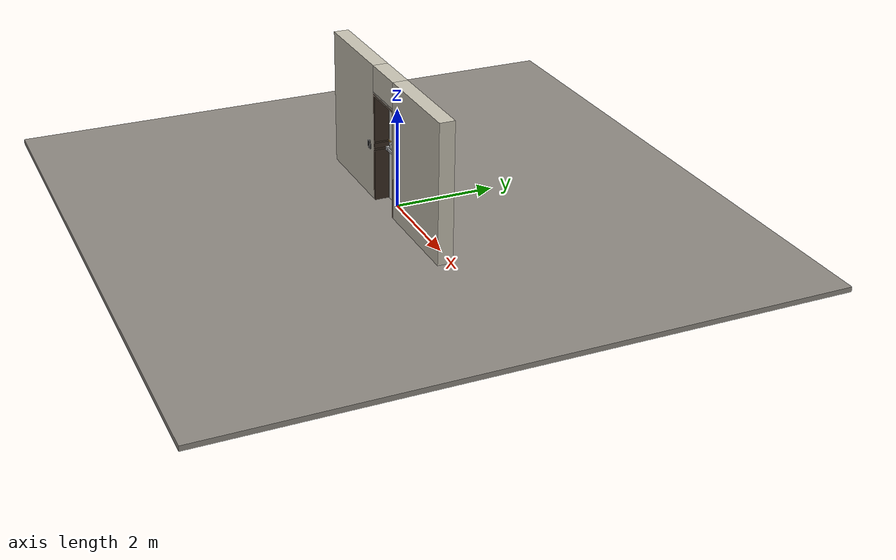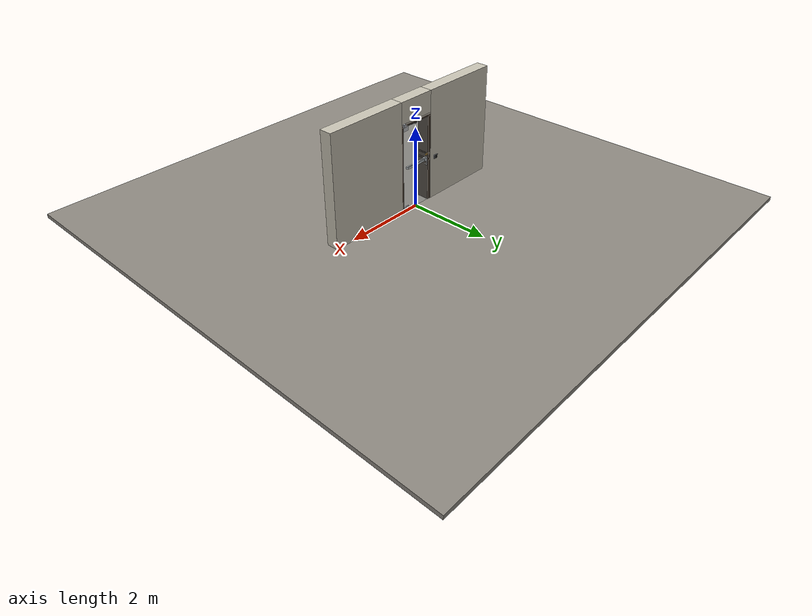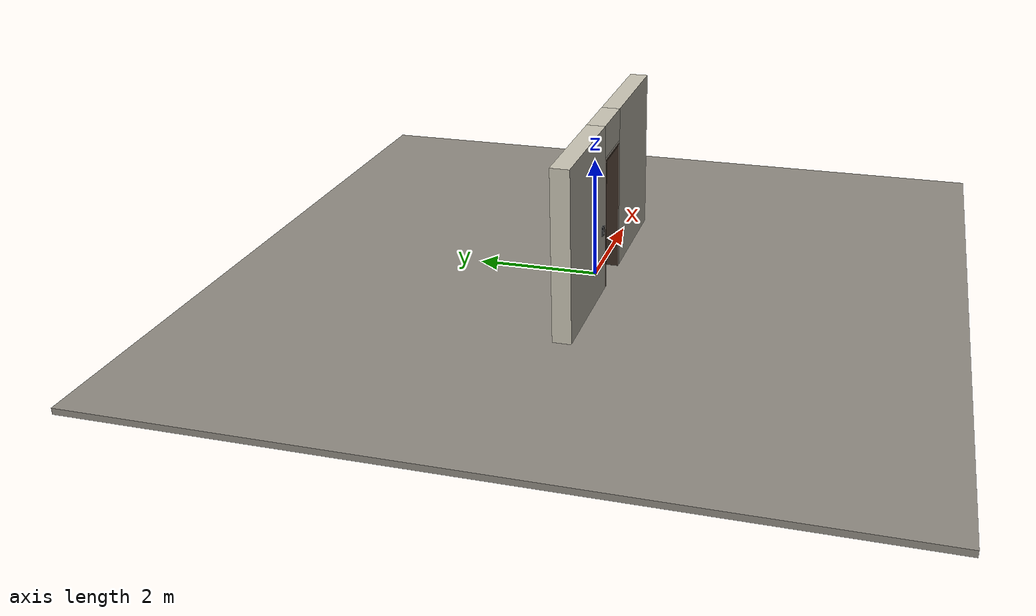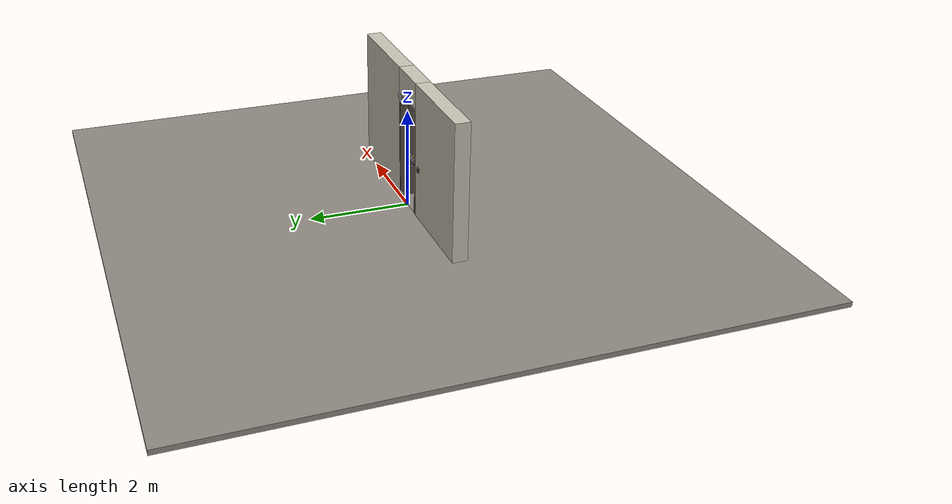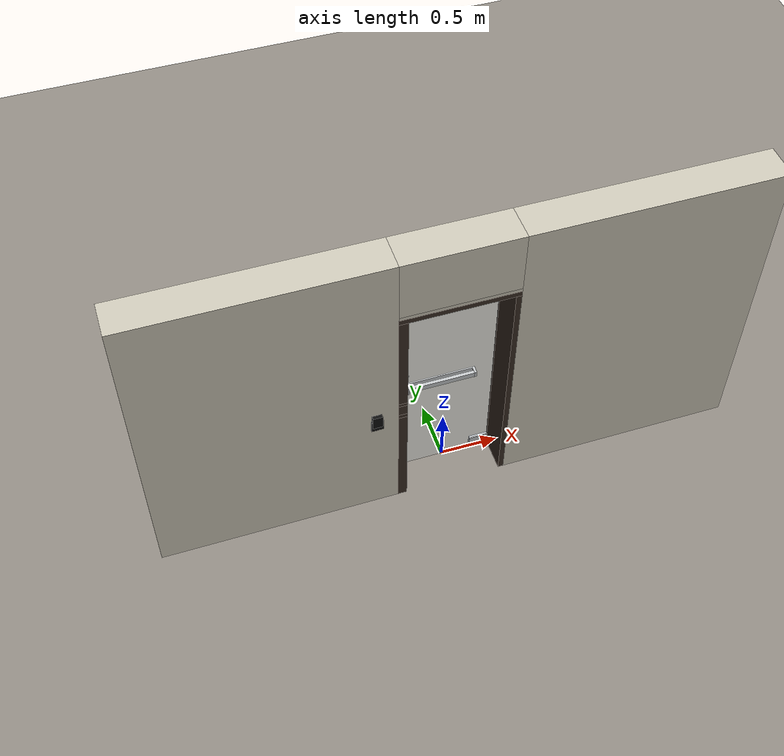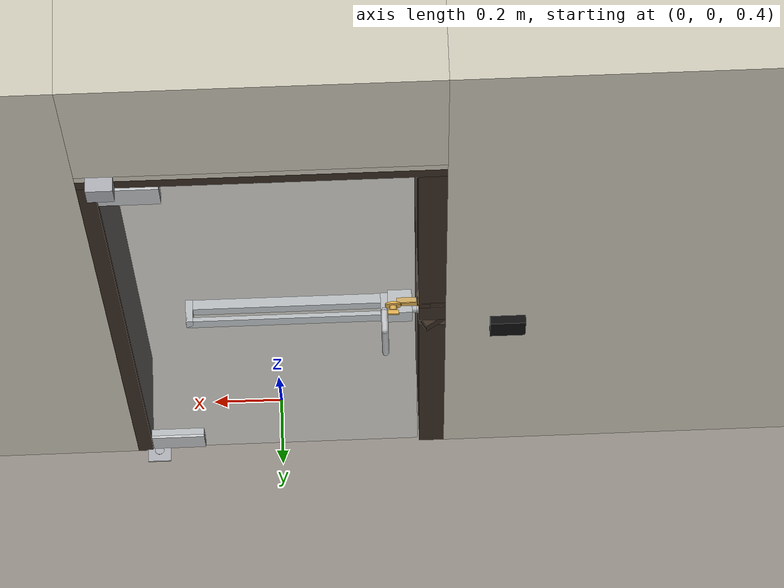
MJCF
<?xml version="1.0" ?>
<mujoco model="db0011_automatic_swing_full">
  <compiler angle="radian" meshdir="../../hardware" texturedir="../../textures" autolimits="true" inertiafromgeom="false"/>
  <option timestep="0.002" integrator="implicitfast" cone="elliptic" impratio="10" noslip_iterations="3">
    <flag multiccd="enable"/>
  </option>
  <size memory="16M"/>
  <default>
    <geom condim="4" solref="0.005 1" solimp="0.95 0.99 0.001"/>
    <joint solreflimit="0.005 1" solimplimit="0.95 0.99 0.001"/>
    <tendon solreflimit="0.005 1"/>
    <equality solref="0.002 1"/>
  </default>
  <visual>
    <headlight ambient="0.4 0.4 0.4" diffuse="0.7 0.7 0.7" specular="0.2 0.2 0.2"/>
    <quality shadowsize="4096"/>
    <map znear="0.01" zfar="60"/>
  </visual>
  <asset>
    <mesh name="pull_1e5d69a91a" file="pull_1e5d69a91a.obj"/>
    <mesh name="thumbturn_eb5c9899a3" file="thumbturn_eb5c9899a3.obj"/>
    <mesh name="touchbar_pad_73300ec449" file="touchbar_pad_73300ec449.obj"/>
    <material name="mat_floor" rgba="0.55 0.53 0.5 1" specular="0.2" shininess="0.15" reflectance="0"/>
    <material name="mat_wall" rgba="0.78 0.76 0.7 1" specular="0.2" shininess="0.1" reflectance="0"/>
    <material name="mat_leaf" rgba="0.85 0.92 0.95 0.25" specular="0.2" shininess="0.95" reflectance="0.1"/>
    <material name="mat_glass_leaf" rgba="0.85 0.92 0.95 0.25" specular="0.2" shininess="0.95" reflectance="0.1"/>
    <material name="mat_patch" rgba="0.75 0.76 0.77 1" specular="0.8" shininess="0.65" reflectance="0.4"/>
    <material name="mat_hinge" rgba="0.65 0.66 0.68 1" specular="0.74" shininess="0.5" reflectance="0.36"/>
    <material name="mat_op_stainless" rgba="0.75 0.76 0.77 1" specular="0.8" shininess="0.65" reflectance="0.4"/>
    <material name="mat_bolt" rgba="0.75 0.76 0.77 1" specular="0.8" shininess="0.65" reflectance="0.4"/>
    <material name="mat_deadbolt" rgba="0.85 0.66 0.3 1" specular="0.8" shininess="0.75" reflectance="0.4"/>
    <material name="mat_frame" rgba="0.22 0.17 0.13 1" specular="0.8" shininess="0.6" reflectance="0.4"/>
    <material name="mat_closer" rgba="0.22 0.17 0.13 1" specular="0.8" shininess="0.6" reflectance="0.4"/>
    <material name="mat_wallreader" rgba="0.05 0.05 0.05 1" specular="0.38" shininess="0.3" reflectance="0.12"/>
    <texture name="skybox" type="skybox" builtin="gradient" rgb1="0.6 0.7 0.85" rgb2="0.9 0.92 0.95" width="256" height="256"/>
  </asset>
  <worldbody>
    <light name="sun" pos="1.5 -2.5 4" dir="-0.3 0.5 -0.8" directional="true" diffuse="0.8 0.8 0.8" specular="0.3 0.3 0.3" castshadow="true"/>
    <light name="fill" pos="-1.5 2.5 3" dir="0.3 -0.5 -0.7" directional="true" diffuse="0.35 0.35 0.4" castshadow="false"/>
    <camera name="robot_view" pos="0 -2.774812 1.812087" xyaxes="1 0 0 0 0.26963 0.962964" fovy="52"/>
    <camera name="far_view" pos="0 2.500812 1.812087" xyaxes="-1 0 0 0 -0.26963 0.962964" fovy="52"/>
    <camera name="iso" pos="-2.004737 -2.352762 2.234138" xyaxes="0.741536 -0.670913 0 0.242917 0.268487 0.932151" fovy="46"/>
    <camera name="detail_handle" pos="-0.135 -0.734 1.347" xyaxes="0.97561 0.219512 0 -0.070934 0.315262 0.94635" fovy="38"/>
    <geom name="floor" type="box" size="6 6 0.05" pos="0 0 -0.05" material="mat_floor" group="0" contype="1" conaffinity="1" friction="0.8 0.005 0.0001" density="2400"/>
    <geom name="wall_left" type="box" size="1.007 0.15 1.3735" pos="-1.493 -0.137 1.3735" material="mat_wall" group="0" contype="1" conaffinity="1" friction="0.6 0.005 0.0001" density="800"/>
    <geom name="wall_right" type="box" size="1.022 0.15 1.3735" pos="1.478 -0.137 1.3735" material="mat_wall" group="0" contype="1" conaffinity="1" friction="0.6 0.005 0.0001" density="800"/>
    <geom name="wall_header" type="box" size="0.471 0.15 0.2625" pos="-0.015 -0.137 2.4845" material="mat_wall" group="0" contype="1" conaffinity="1" friction="0.6 0.005 0.0001" density="800"/>
    <geom name="pivot_bottom_socket" type="box" size="0.035 0.035 0.0085" pos="0.392 0.016 -0.0015" material="mat_hinge" group="1" contype="0" conaffinity="0" density="7850"/>
    <geom name="pivot_top_bracket" type="box" size="0.035 0.035 0.0355" pos="0.392 0.016 2.1865" material="mat_hinge" group="1" contype="0" conaffinity="0" density="7850"/>
    <geom name="leaf_deadbolt_strike_b" type="box" size="0.0155 0.003 0.0005" pos="-0.4105 0 1.1885" quat="0.5 0.5 0.5 0.5" material="mat_deadbolt" group="1" contype="0" conaffinity="0" density="7800"/>
    <geom name="leaf_deadbolt_strike_l" type="box" size="0.003 0.0155 0.0005" pos="-0.4105 -0.0125 1.207" quat="0.5 0.5 0.5 0.5" material="mat_deadbolt" group="1" contype="0" conaffinity="0" density="7800"/>
    <geom name="leaf_deadbolt_strike_t" type="box" size="0.0155 0.003 0.0005" pos="-0.4105 0 1.2255" quat="0.5 0.5 0.5 0.5" material="mat_deadbolt" group="1" contype="0" conaffinity="0" density="7800"/>
    <geom name="leaf_deadbolt_strike_r" type="box" size="0.003 0.0155 0.0005" pos="-0.4105 0.0125 1.207" quat="0.5 0.5 0.5 0.5" material="mat_deadbolt" group="1" contype="0" conaffinity="0" density="7800"/>
    <geom name="jamb_hinge" type="box" size="0.0225 0.15 1.0735" pos="0.4335 -0.137 1.0735" material="mat_frame" group="0" contype="1" conaffinity="1" friction="0.6 0.005 0.0001" density="300"/>
    <geom name="strike_1067_wall_n" type="box" size="0.0375 0.124 0.02" pos="-0.4485 -0.163 1.067" material="mat_frame" group="0" contype="1" conaffinity="1" friction="0.6 0.005 0.0001" density="300"/>
    <geom name="strike_1067_wall_p" type="box" size="0.0375 0.008 0.02" pos="-0.4485 -0.009 1.067" material="mat_frame" group="0" contype="1" conaffinity="1" friction="0.6 0.005 0.0001" density="300"/>
    <geom name="strike_1067_ramp" type="box" size="0.0375 0.019723 0.02" pos="-0.453323 -0.003013 1.067" quat="0.964866 0 0 0.262741" material="mat_frame" group="0" contype="1" conaffinity="1" friction="0.12 0.005 0.0001" density="300"/>
    <geom name="strike_1067_back" type="box" size="0.026 0.011 0.02" pos="-0.46 -0.028 1.067" material="mat_frame" group="0" contype="1" conaffinity="1" friction="0.6 0.005 0.0001" density="300"/>
    <geom name="strike_1207_wall_n" type="box" size="0.0375 0.13875 0.0155" pos="-0.4485 -0.14825 1.207" material="mat_frame" group="0" contype="1" conaffinity="1" friction="0.6 0.005 0.0001" density="300"/>
    <geom name="strike_1207_wall_p" type="box" size="0.0157 0.003 0.0155" pos="-0.4267 0.0125 1.207" material="mat_frame" group="0" contype="1" conaffinity="1" friction="0.6 0.005 0.0001" density="300"/>
    <geom name="strike_1207_back" type="box" size="0.0228 0.0095 0.0155" pos="-0.4632 0 1.207" material="mat_frame" group="0" contype="1" conaffinity="1" friction="0.6 0.005 0.0001" density="300"/>
    <geom name="jamb_strike_0" type="box" size="0.0375 0.15 0.5235" pos="-0.4485 -0.137 0.5235" material="mat_frame" group="0" contype="1" conaffinity="1" friction="0.6 0.005 0.0001" density="300"/>
    <geom name="jamb_strike_1" type="box" size="0.0375 0.15 0.05225" pos="-0.4485 -0.137 1.13925" material="mat_frame" group="0" contype="1" conaffinity="1" friction="0.6 0.005 0.0001" density="300"/>
    <geom name="jamb_strike_2" type="box" size="0.0375 0.15 0.46225" pos="-0.4485 -0.137 1.68475" material="mat_frame" group="0" contype="1" conaffinity="1" friction="0.6 0.005 0.0001" density="300"/>
    <geom name="jamb_head" type="box" size="0.471 0.15 0.0225" pos="-0.015 -0.137 2.1695" material="mat_frame" group="0" contype="1" conaffinity="1" friction="0.6 0.005 0.0001" density="300"/>
    <geom name="head_stud" type="box" size="0.471 0.15 0.015" pos="-0.015 -0.137 2.207" material="mat_wall" group="0" contype="1" conaffinity="1" friction="0.6 0.005 0.0001" density="500"/>
    <geom name="auto_operator_header" type="box" size="0.34 0.055 0.055" pos="0 -0.071 2.218" material="mat_closer" group="0" contype="1" conaffinity="1" friction="0.6 0.005 0.0001" density="1500"/>
    <geom name="wall_reader" type="box" size="0.04 0.015 0.06" pos="-0.661 -0.302 1.1" material="mat_wallreader" group="0" contype="1" conaffinity="1" friction="0.6 0.005 0.0001" density="1000"/>
    <geom name="wave_sensor_n" type="box" size="0.05 0.012 0.05" pos="-0.661 -0.299 1.05" material="mat_wallreader" group="0" contype="1" conaffinity="1" friction="0.6 0.005 0.0001" density="1000"/>
    <geom name="wave_sensor_p" type="box" size="0.05 0.012 0.05" pos="-0.661 0.025 1.05" material="mat_wallreader" group="0" contype="1" conaffinity="1" friction="0.6 0.005 0.0001" density="1000"/>
    <site name="approach_point" pos="0 -1.5 0" quat="1 0 0 0" size="0.05" rgba="0.2 0.9 0.2 0.5" group="4"/>
    <site name="goal_point" pos="0 1.5 0" quat="1 0 0 0" size="0.05" rgba="0.2 0.9 0.2 0.5" group="4"/>
    <site name="door_plane_center" pos="0 0 1.0735" quat="1 0 0 0" size="0.02" rgba="0.2 0.9 0.2 0.5" group="4"/>
    <body name="leaf" pos="0.411 0 0">
      <inertial pos="-0.493186 -0.0094 1.148947" mass="63.796282" quat="0.481396 0.480594 0.522096 -0.514494" diaginertia="3.854056546 16.292976763 20.052394182"/>
      <joint name="leaf_hinge" type="hinge" axis="0 0 -1" pos="-0.019 0.016 0" limited="true" range="0 1.745329" damping="15.168374" frictionloss="0.633524" stiffness="15.342537" springref="-1.864099" armature="0.02"/>
      <geom name="leaf_glass" type="box" size="0.4065 0.006 1.067" pos="-0.4095 0 1.076" material="mat_glass_leaf" group="0" contype="1" conaffinity="1" friction="0.4 0.005 0.0001" density="1"/>
      <geom name="leaf_patch_bot" type="box" size="0.08 0.014 0.05" pos="-0.083 0 0.069" material="mat_patch" group="1" contype="0" conaffinity="0" density="1"/>
      <geom name="leaf_patch_top" type="box" size="0.08 0.014 0.05" pos="-0.083 0 2.083" material="mat_patch" group="1" contype="0" conaffinity="0" density="1"/>
      <geom name="pivot_bottom" type="cylinder" size="0.014 0.004" pos="-0.019 0.016 0.004" material="mat_hinge" group="1" contype="0" conaffinity="0" density="7850"/>
      <geom name="pivot_top" type="cylinder" size="0.014 0.004" pos="-0.019 0.016 2.147" material="mat_hinge" group="1" contype="0" conaffinity="0" density="7850"/>
      <geom name="leaf_exit_device_rail" type="box" size="0.284225 0.006 0.025" pos="-0.451775 -0.012 1.067" material="mat_op_stainless" group="0" contype="1" conaffinity="1" friction="0.6 0.005 0.0001" density="3000"/>
      <geom name="leaf_exit_device_rail_end_n" type="box" size="0.01 0.0325 0.025" pos="-0.726 -0.0385 1.067" material="mat_op_stainless" group="0" contype="1" conaffinity="1" friction="0.6 0.005 0.0001" density="3000"/>
      <geom name="leaf_exit_device_rail_end_p" type="box" size="0.01 0.0325 0.025" pos="-0.17755 -0.0385 1.067" material="mat_op_stainless" group="0" contype="1" conaffinity="1" friction="0.6 0.005 0.0001" density="3000"/>
      <geom name="leaf_exit_device_case" type="box" size="0.034 0.034125 0.0375" pos="-0.77 -0.040125 1.067" material="mat_op_stainless" group="0" contype="1" conaffinity="1" friction="0.6 0.005 0.0001" density="3000"/>
      <geom name="leaf_far_pull_p" type="mesh" mesh="pull_1e5d69a91a" pos="-0.726 0.006 1.067" quat="0 0 0.707107 0.707107" material="mat_op_stainless" group="1" contype="0" conaffinity="0" density="3000"/>
      <geom name="leaf_far_pull_col_p" type="capsule" size="0.0095 0.08" pos="-0.726 0.066 1.067" material="mat_op_stainless" group="3" contype="1" conaffinity="1" rgba="0.8 0.3 0.3 0.25" friction="0.7 0.01 0.0001" density="3000"/>
      <geom name="leaf_deadbolt_faceplate" type="box" size="0.0006 0.004 0.0245" pos="-0.8154 0 1.207" material="mat_deadbolt" group="1" contype="0" conaffinity="0" density="8500"/>
      <geom name="auto_operator_arm" type="box" size="0.22 0.008 0.008" pos="-0.25 -0.036 2.114" material="mat_closer" group="1" contype="0" conaffinity="0" density="2700"/>
      <geom name="auto_operator_arm_shoe" type="box" size="0.03 0.016 0.014" pos="-0.44 -0.022 2.114" material="mat_closer" group="1" contype="0" conaffinity="0" density="2700"/>
      <site name="leaf_far_pull_grip_p" pos="-0.726 0.066 1.067" quat="1 0 0 0" size="0.012" rgba="0.2 0.9 0.2 0.5" group="4"/>
      <site name="leaf_edge_mid" pos="-0.816 0 1.067" quat="1 0 0 0" size="0.02" rgba="0.2 0.9 0.2 0.5" group="4"/>
      <body name="leaf_exit_device" pos="-0.451775 -0.006 1.067">
        <inertial pos="0 -0.05 0" mass="4.231845" quat="0.707107 0.707107 0 0" diaginertia="0.001031512 0.096575641 0.096972376"/>
        <joint name="leaf_exit_device_slide" type="slide" axis="0 1 0" limited="true" range="0 0.016" damping="145.027087" frictionloss="0.5" stiffness="1200" springref="-0.015" armature="0.15"/>
        <geom name="leaf_exit_device_pad" type="mesh" mesh="touchbar_pad_73300ec449" pos="0 0 0" quat="0 0 -0.707107 0.707107" material="mat_op_stainless" group="1" contype="0" conaffinity="0" density="3000"/>
        <geom name="leaf_exit_device_pad_col" type="box" size="0.261225 0.015 0.0225" pos="0 -0.05 0" material="mat_op_stainless" group="3" contype="1" conaffinity="1" rgba="0.8 0.3 0.3 0.25" friction="0.8 0.01 0.0001" density="3000"/>
        <site name="leaf_exit_device_push" pos="0 -0.065 0" quat="1 0 0 0" size="0.015" rgba="0.2 0.9 0.2 0.5" group="4"/>
      </body>
      <body name="leaf_latch_bolt" pos="-0.816 -0.028 1.067">
        <inertial pos="0.0055 0 0" mass="0.102826" quat="0.92388 0.382683 0 0" diaginertia="0.000004365 0.000018287 0.000018287"/>
        <joint name="leaf_latch_bolt_slide" type="slide" axis="1 0 0" limited="true" range="0 0.019" damping="2" frictionloss="0.3" stiffness="800" springref="-0.01" armature="0.1"/>
        <geom name="leaf_latch_bolt_capsule" type="capsule" size="0.0095 0.015" pos="0.0055 0 0" quat="0.707107 0 -0.707107 0" material="mat_bolt" group="0" contype="1" conaffinity="1" friction="0.2 0.005 0.0001" density="8500"/>
      </body>
      <body name="leaf_deadbolt" pos="-0.816 0 1.207">
        <inertial pos="0.0277 0 0" mass="0.18836" quat="0 0 0.707107 0.707107" diaginertia="0.000013829 0.000052194 0.000057986"/>
        <joint name="leaf_deadbolt_slide" type="slide" axis="1 0 0" limited="true" range="0 0.0254" damping="5" frictionloss="1.5" armature="0.1" ref="0.0254"/>
        <geom name="leaf_deadbolt_box" type="box" size="0.0277 0.008 0.0125" pos="0.0277 0 0" material="mat_deadbolt" group="0" contype="1" conaffinity="1" friction="0.3 0.005 0.0001" density="8500"/>
      </body>
      <body name="leaf_deadbolt_thumbturn" pos="-0.751 0.006 1.207">
        <inertial pos="0 0.012928 0" mass="0.178946" quat="0.000001 -0.707107 0.707107 -0.000001" diaginertia="0.000026045 0.000026215 0.000032438"/>
        <joint name="leaf_deadbolt_thumbturn_hinge" type="hinge" axis="0 -1 0" limited="true" range="0 1.5708" damping="0.05" frictionloss="0.3" armature="0.005" ref="1.5708"/>
        <geom name="leaf_deadbolt_thumbturn_mesh" type="mesh" mesh="thumbturn_eb5c9899a3" pos="0 0 0" quat="0.500001 -0.500001 0.499999 0.499999" material="mat_deadbolt" group="0" contype="1" conaffinity="1" friction="0.6 0.005 0.0001" density="7100"/>
        <geom name="leaf_deadbolt_thumbturn_col" type="box" size="0.006 0.012 0.016" pos="0 0.02 0" quat="0.707105 0 -0.707108 0" material="mat_deadbolt" group="3" contype="1" conaffinity="1" rgba="0.8 0.3 0.3 0.25" friction="0.6 0.005 0.0001" density="7100"/>
      </body>
    </body>
  </worldbody>
  <tendon>
    <fixed name="leaf_latch_bolt_coupling" limited="true" range="0 10">
      <joint joint="leaf_latch_bolt_slide" coef="1"/>
      <joint joint="leaf_exit_device_slide" coef="-1.357143"/>
    </fixed>
  </tendon>
  <equality>
    <joint name="leaf_deadbolt_couple" joint1="leaf_deadbolt_slide" joint2="leaf_deadbolt_thumbturn_hinge" polycoef="0 0.01617 0 0 0" active="true"/>
  </equality>
  <contact>
    <exclude body1="leaf_deadbolt" body2="leaf_deadbolt_thumbturn"/>
  </contact>
  <actuator>
    <position name="swing_operator" joint="leaf_hinge" kp="150" kv="40" forcerange="-60 60" ctrlrange="0 1.6"/>
  </actuator>
  <sensor>
    <jointpos name="leaf_hinge_pos" joint="leaf_hinge"/>
    <jointvel name="leaf_hinge_vel" joint="leaf_hinge"/>
    <jointpos name="leaf_exit_device_slide_pos" joint="leaf_exit_device_slide"/>
    <jointvel name="leaf_exit_device_slide_vel" joint="leaf_exit_device_slide"/>
    <jointpos name="leaf_latch_bolt_slide_pos" joint="leaf_latch_bolt_slide"/>
    <jointvel name="leaf_latch_bolt_slide_vel" joint="leaf_latch_bolt_slide"/>
    <jointpos name="leaf_deadbolt_slide_pos" joint="leaf_deadbolt_slide"/>
    <jointvel name="leaf_deadbolt_slide_vel" joint="leaf_deadbolt_slide"/>
    <jointpos name="leaf_deadbolt_thumbturn_hinge_pos" joint="leaf_deadbolt_thumbturn_hinge"/>
    <jointvel name="leaf_deadbolt_thumbturn_hinge_vel" joint="leaf_deadbolt_thumbturn_hinge"/>
  </sensor>
</mujoco>
